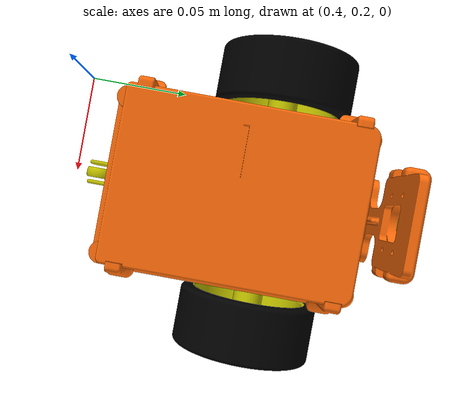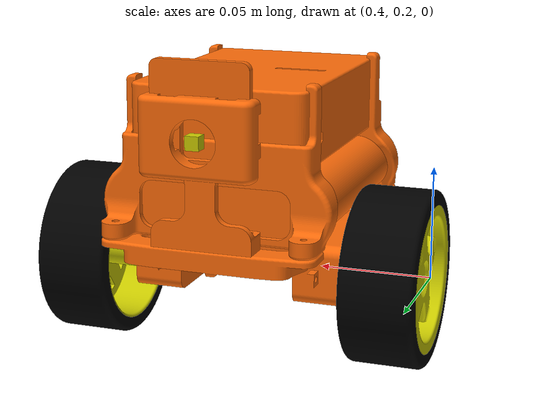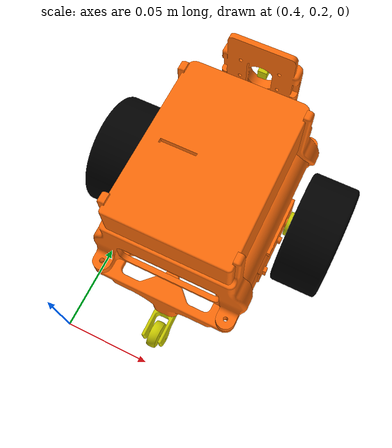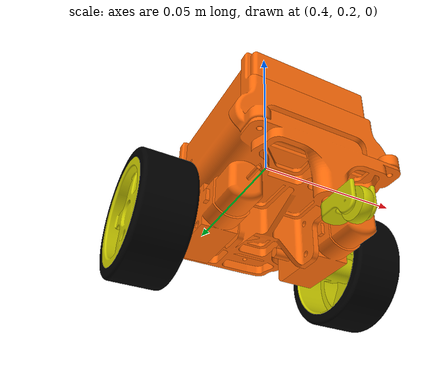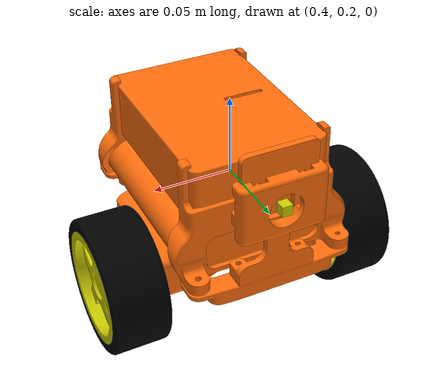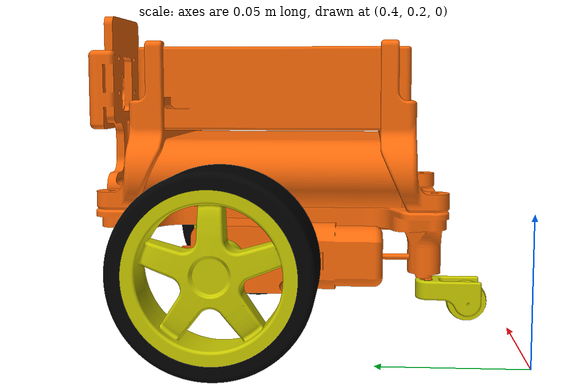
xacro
<?xml version="1.0"?>
<!-- Revolute-Revolute Manipulator -->
<robot name="puffin_twister" xmlns:xacro="http://www.ros.org/wiki/xacro">

  <!-- Constants for robot dimensions -->
  <xacro:property name="PI" value="3.1415926535897931"/>
  <xacro:property name="mass" value="0.06" /> <!-- arbitrary value for mass -->
  <xacro:property name="width" value="0.015" /> <!-- Square dimensions (widthxwidth) of beams -->
  <xacro:property name="height1" value="0.3" /> <!-- Link 1 -->
  <xacro:property name="height2" value="0.05" /> <!-- Link 2 -->
  <xacro:property name="height3" value="0.05" /> <!-- Link 3 -->
  <xacro:property name="camera_link" value="0.0125" /> <!-- Size of square 'camera' box -->
  <xacro:property name="axel_offset" value="0.0125" /> <!-- Space btw top of beam and the each joint -->

  <!-- Import all Gazebo-customization elements, including Gazebo colors -->
  <xacro:include filename="$(find pt_description)/urdf/pt.gazebo" />
  <!-- Import Rviz colors -->
  <xacro:include filename="$(find pt_description)/urdf/materials.xacro" />

  <link name="puffin">
  </link>

  <joint name="chassis_fix" type="fixed">
    <parent link="puffin"/>
    <child link="chassis"/>
    <origin xyz="0.45 0.30 0" rpy="0 0 0"/>
  </joint>

  <link name="chassis">
    <collision>
      <origin xyz="0.0 -0.015 0.0615" rpy="0 0 0"/>
      <geometry>
        <box size="0.08 0.121 0.085"/>
      </geometry>
    </collision>

    <visual>
      <origin xyz="0 0 0" rpy="0 0 0"/>
      <geometry>
        <mesh filename="package://pt_description/meshes/twister_base.stl"/>
      </geometry>
      <material name="orange"/>
    </visual>

    <inertial>
      <origin xyz="0 -0.014693 0.06776" rpy="0 0 0"/>
      <mass value="0.626"/>
      <inertia ixx="6.154e-4" ixy="0.0" ixz="0.0"
               iyy="4.298e-4" iyz="0.0"
               izz="4.298e-4"/>
    </inertial>
  </link>

  <joint name="camera_holder_joint" type="fixed">
    <parent link="chassis"/>
    <child link="camera_holder"/>
    <origin xyz="0.0 0.0458 0.0488" rpy="0 0 0"/>
  </joint>
  <link name="camera_holder">
    <collision>
      <origin xyz="0.0 -0.0055 0.033" rpy="0 0 0"/>
      <geometry>
        <box size="0.037 0.011 0.066"/>
      </geometry>
    </collision>

    <visual>
      <origin xyz="0 0 0" rpy="0 0 0"/>
      <geometry>
        <mesh filename="package://pt_description/meshes/twister_camera_holder.stl"/>
      </geometry>
      <material name="orange"/>
    </visual>

    <inertial>
      <origin xyz="0 0.002 0.035" rpy="0 0 0"/>
      <mass value="0.012"/>
      <inertia ixx="3.717e-6" ixy="0.0" ixz="0.0"
               iyy="5.325e-6" iyz="0.0"
               izz="1.839e-6"/>
    </inertial>
  </link>

  <joint name="right_motor_joint" type="fixed">
    <parent link="chassis"/>
    <child link="right_motor"/>
    <origin xyz="0.0497 0.0 0.03255" rpy="0 0 0"/>
  </joint>

  <link name="right_motor">
    <collision>
      <origin xyz="-0.0185 -0.0205 0.0" rpy="0 0 0"/>
      <geometry>
        <box size="0.023 0.065 0.023"/>
      </geometry>
    </collision>

    <visual>
      <origin xyz="0 0 0" rpy="0 0 0"/>
      <geometry>
        <mesh filename="package://pt_description/meshes/twister_motor.stl"/>
      </geometry>
      <material name="orange"/>
    </visual>

    <inertial>
      <origin xyz="-0.0185 -0.0183 0.0" rpy="0 0 0"/>
      <mass value="0.025"/>
      <inertia ixx="9.2e-6" ixy="0.0" ixz="0.0"
               iyy="1.7e-6" iyz="0.0"
               izz="9.0e-6"/>
    </inertial>
  </link>

  <joint name="left_motor_joint" type="fixed">
    <parent link="chassis"/>
    <child link="left_motor"/>
    <origin xyz="-0.0497 0.0 0.03255" rpy="0 3.14159 0"/>
  </joint>

  <link name="left_motor">
    <collision>
      <origin xyz="-0.0185 -0.0205 0.0" rpy="0 0 0"/>
      <geometry>
        <box size="0.023 0.065 0.023"/>
      </geometry>
    </collision>

    <visual>
      <origin xyz="0 0 0" rpy="0 0 0"/>
      <geometry>
        <mesh filename="package://pt_description/meshes/twister_motor.stl"/>
      </geometry>
      <material name="orange"/>
    </visual>

    <inertial>
      <origin xyz="-0.0185 -0.0183 0.0" rpy="0 0 0"/>
      <mass value="0.025"/>
      <inertia ixx="9.2e-6" ixy="0.0" ixz="0.0"
               iyy="1.7e-6" iyz="0.0"
               izz="9.0e-6"/>
    </inertial>
  </link>

  <joint name="battery_holder_front_joint" type="fixed">
    <parent link="chassis"/>
    <child link="battery_holder_front"/>
    <origin xyz="0.0 0.0213 0.0488" rpy="0 0 3.14159"/>
  </joint>

  <link name="battery_holder_front">
    <collision>
      <origin xyz="-0.0185 -0.0205 0.0" rpy="0 0 0"/>
      <geometry>
        <box size="0.023 0.065 0.023"/>
      </geometry>
    </collision>

    <visual>
      <origin xyz="0 0 0" rpy="0 0 0"/>
      <geometry>
        <mesh filename="package://pt_description/meshes/twister_battery_holder.stl"/>
      </geometry>
      <material name="orange"/>
    </visual>

    <inertial>
      <origin xyz="0.030 -0.0089 0.0212" rpy="0 0 0"/>
      <mass value="0.011"/>
      <inertia ixx="2.0e-6" ixy="0.0" ixz="0.0"
               iyy="1.1e-5" iyz="0.0"
               izz="9.4e-6"/>
    </inertial>
  </link>

  <joint name="battery_holder_back_joint" type="fixed">
    <parent link="chassis"/>
    <child link="battery_holder_back"/>
    <origin xyz="0.0 -0.0517 0.0488" rpy="0 0 0"/>
  </joint>

  <link name="battery_holder_back">
    <collision>
      <origin xyz="-0.0185 -0.0205 0.0" rpy="0 0 0"/>
      <geometry>
        <box size="0.023 0.065 0.023"/>
      </geometry>
    </collision>

    <visual>
      <origin xyz="0 0 0" rpy="0 0 0"/>
      <geometry>
        <mesh filename="package://pt_description/meshes/twister_battery_holder.stl"/>
      </geometry>
      <material name="orange"/>
    </visual>

    <inertial>
      <origin xyz="0.030 -0.0089 0.0212" rpy="0 0 0"/>
      <mass value="0.011"/>
      <inertia ixx="2.0e-6" ixy="0.0" ixz="0.0"
               iyy="1.1e-5" iyz="0.0"
               izz="9.4e-6"/>
    </inertial>
  </link>

  <joint name="back_wheel_holder_hinge" type="continuous">
    <parent link="chassis"/>
    <child link="back_wheel_holder"/>
    <origin xyz="0.0 -0.0687 0.0183" rpy="0 0 0"/>
    <axis xyz="0 0 1"/>
    <dynamics damping="0.01" friction="0.01"/>
  </joint>

  <link name="back_wheel_holder">
    <collision>
      <origin xyz="0 -0.009 -0.0065" rpy="0 0 0"/>
      <geometry>
        <box size="0.012 0.024 0.013"/>
      </geometry>
    </collision>

    <visual>
      <origin xyz="0 0 0" rpy="0 0 0"/>
      <geometry>
        <mesh filename="package://pt_description/meshes/twister_back_wheel_holder.stl"/>
      </geometry>
      <material name="yellow"/>
    </visual>

    <inertial>
      <origin xyz="0 -0.008 -0.0046" rpy="0 0 0"/>
      <mass value="0.001"/>
      <inertia ixx="7.198e-8" ixy="0.0" ixz="0.0"
               iyy="3.400e-8" iyz="0.0"
               izz="8.483e-8"/>
    </inertial>
  </link>

  <joint name="back_wheel_hinge" type="continuous">
    <parent link="back_wheel_holder"/>
    <child link="back_wheel"/>
    <origin xyz="0.0 -0.016 -0.008" rpy="0 0 0"/>
    <axis xyz="1 0 0"/>
    <dynamics damping="0.01" friction="0.001"/>
  </joint>

  <link name="back_wheel">
    <collision>
      <origin xyz="0 0 0" rpy="0 1.5707 0"/>
      <geometry>
        <cylinder length="0.007" radius="0.0075"/>
      </geometry>
    </collision>

    <visual>
      <origin xyz="0 0 0" rpy="0 0 0"/>
      <geometry>
        <mesh filename="package://pt_description/meshes/twister_back_wheel.stl"/>
      </geometry>
      <material name="yellow"/>
    </visual>

    <inertial>
      <origin xyz="0 0 0" rpy="0 0 0"/>
      <mass value="0.001"/>
      <inertia ixx="2.427e-8" ixy="0.0" ixz="0.0"
               iyy="1.393e-8" iyz="0.0"
               izz="1.393e-8"/>
    </inertial>
  </link>

  <joint name="right_wheel_hinge" type="continuous">
    <parent link="chassis"/>
    <child link="right_wheel_rim"/>
    <origin xyz="0.0414 0 0.03255" rpy="0 0 0"/>
    <axis xyz="-1 0 0"/>
    <dynamics damping="0.01" friction="0.001"/>
  </joint>

  <link name="right_wheel_rim">
    <collision>
      <origin xyz="0.016 0 0" rpy="0 1.5707 0"/>
      <geometry>
        <cylinder length="0.027" radius="0.032255"/>
      </geometry>
    </collision>

    <visual>
      <origin xyz="0 0 0" rpy="0 0 0"/>
      <geometry>
        <mesh filename="package://pt_description/meshes/twister_rim.stl"/>
      </geometry>
      <material name="yellow"/>
    </visual>

    <inertial>
      <origin xyz="0.0179 0 0" rpy="0 0 0"/>
      <mass value="0.010"/>
      <inertia ixx="4.210e-8" ixy="0.0" ixz="0.0"
               iyy="2.434e-8" iyz="0.0"
               izz="2.434e-8"/>
    </inertial>
  </link>

  <joint name="right_wheel_tire_mount" type="fixed">
    <parent link="right_wheel_rim"/>
    <child link="right_wheel_tire"/>
  </joint>

  <link name="right_wheel_tire">
    <collision>
      <origin xyz="0.016 0 0" rpy="0 1.5707 0"/>
      <geometry>
        <cylinder length="0.027" radius="0.032255"/>
      </geometry>
    </collision>

    <visual>
      <origin xyz="0 0 0" rpy="0 0 0"/>
      <geometry>
        <mesh filename="package://pt_description/meshes/twister_tire.stl"/>
      </geometry>
      <material name="black"/>
    </visual>

    <inertial>
      <origin xyz="0.016 0 0" rpy="0 0 0"/>
      <mass value="0.047"/>
      <inertia ixx="4.210e-5" ixy="0.0" ixz="0.0"
               iyy="2.434e-5" iyz="0.0"
               izz="2.434e-5"/>
    </inertial>
  </link>

  <joint name="left_wheel_hinge" type="continuous">
    <parent link="chassis"/>
    <child link="left_wheel_rim"/>
    <origin xyz="-0.0414 0 0.03255" rpy="0 0 3.14159"/>
    <axis xyz="1 0 0"/>
    <dynamics damping="0.01" friction="0.001"/>
  </joint>

  <link name="left_wheel_rim">
    <visual>
      <origin xyz="0 0 0" rpy="0 0 0"/>
      <geometry>
        <mesh filename="package://pt_description/meshes/twister_rim.stl"/>
      </geometry>
      <material name="yellow"/>
    </visual>

    <inertial>
      <origin xyz="0.0179 0 0" rpy="0 0 0"/>
      <mass value="0.010"/>
      <inertia ixx="4.210e-8" ixy="0.0" ixz="0.0"
               iyy="2.434e-8" iyz="0.0"
               izz="2.434e-8"/>
    </inertial>
  </link>

  <joint name="left_wheel_tire_mount" type="fixed">
    <parent link="left_wheel_rim"/>
    <child link="left_wheel_tire"/>
  </joint>

  <link name="left_wheel_tire">
    <collision>
      <origin xyz="0.016 0 0" rpy="0 1.5707 0"/>
      <geometry>
        <cylinder length="0.027" radius="0.032255"/>
      </geometry>
    </collision>

    <visual>
      <origin xyz="0 0 0" rpy="0 0 0"/>
      <geometry>
        <mesh filename="package://pt_description/meshes/twister_tire.stl"/>
      </geometry>
      <material name="black"/>
    </visual>

    <inertial>
      <origin xyz="0.016 0 0" rpy="0 0 0"/>
      <mass value="0.047"/>
      <inertia ixx="4.210e-5" ixy="0.0" ixz="0.0"
               iyy="2.434e-5" iyz="0.0"
               izz="2.434e-5"/>
    </inertial>
  </link>

  <joint name="camera_joint" type="fixed">
    <origin xyz="0 0.05 0.088" rpy="0 0 1.5707"/>
    <parent link="chassis"/>
    <child link="camera_link"/>
  </joint>

  <link name="camera_link">
    <collision>
      <origin xyz="0 0 0" rpy="0 0 0"/>
      <geometry>
        <box size="0.005 0.005 0.005"/>
      </geometry>
    </collision>

    <visual>
      <origin xyz="0 0 0" rpy="0 0 0"/>
      <geometry>
        <box size="0.005 0.005 0.005"/>
      </geometry>
      <material name="yellow"/>
    </visual>

    <inertial>
      <mass value="1e-5" />
      <origin xyz="0 0 0" rpy="0 0 0"/>
      <inertia ixx="1e-8" ixy="0" ixz="0"
               iyy="1e-8" iyz="0"
               izz="1e-8" />
    </inertial>
  </link>

  <joint name="camera_optical_joint" type="fixed">
    <origin xyz="0 0 0" rpy="${-PI/2} 0 ${-PI/2}"/>
    <parent link="camera_link"/>
    <child link="camera_link_optical"/>
  </joint>

  <link name="camera_link_optical">
  </link>

  <transmission name="right_wheel_transmission" type="SimpleTransmission">
    <type>transmission_interface/SimpleTransmission</type>
    <joint name="right_wheel_hinge">
      <hardwareInterface>hardware_interface/EffortJointInterface</hardwareInterface>
    </joint>
    <actuator name="right_wheel_motor">
      <mechanicalReduction>1</mechanicalReduction>
    </actuator>
  </transmission>

  <transmission name="left_wheel_transmission" type="SimpleTransmission">
    <type>transmission_interface/SimpleTransmission</type>
    <joint name="left_wheel_hinge">
      <hardwareInterface>hardware_interface/EffortJointInterface</hardwareInterface>
    </joint>
    <actuator name="left_wheel_motor">
      <mechanicalReduction>1</mechanicalReduction>
    </actuator>
  </transmission>

</robot>

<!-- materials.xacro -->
<robot>

  <material name="black">
    <color rgba="0.0 0.0 0.0 1.0"/>
  </material>

  <material name="blue">
    <color rgba="0.0 0.0 0.8 1.0"/>
  </material>

  <material name="green">
    <color rgba="0.0 0.8 0.0 1.0"/>
  </material>

  <material name="yellow">
    <color rgba="0.8 0.8 0.0 1.0"/>
  </material>

  <material name="grey">
    <color rgba="0.2 0.2 0.2 1.0"/>
  </material>

  <material name="orange">
    <color rgba="${255/255} ${108/255} ${10/255} 1.0"/>
  </material>

  <material name="brown">
    <color rgba="${222/255} ${207/255} ${195/255} 1.0"/>
  </material>

  <material name="red">
    <color rgba="0.8 0.0 0.0 1.0"/>
  </material>

  <material name="white">
    <color rgba="1.0 1.0 1.0 1.0"/>
  </material>

</robot>
